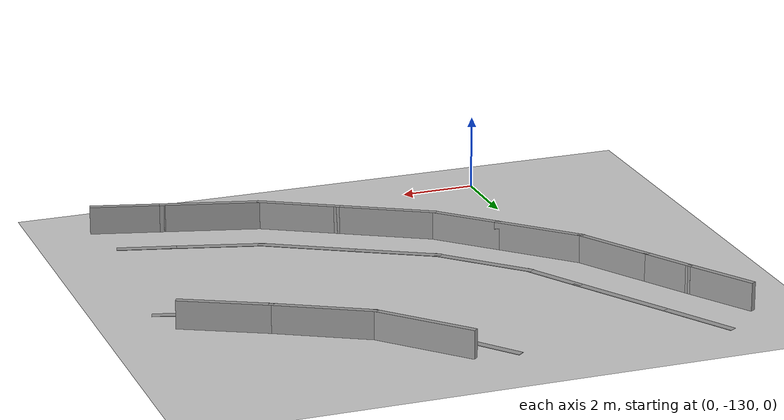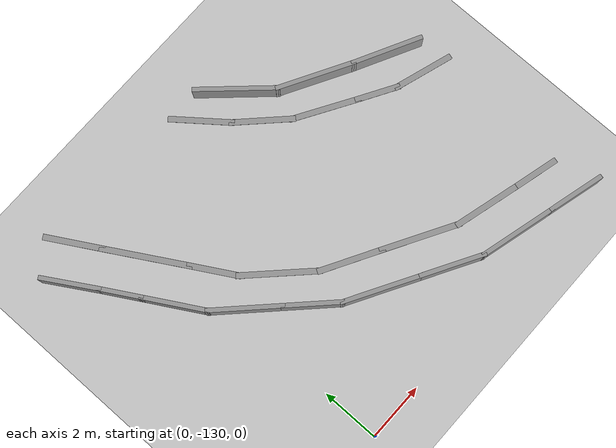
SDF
<sdf version="1.6">
 <world name="default">
  <model name="ground_plane">
   <static>1</static>
   <link name="link">
    <collision name="collision">
     <geometry><plane><normal>0 0 1</normal><size>100 100</size></plane></geometry>
     <surface>
      <contact><collide_bitmask>65535</collide_bitmask></contact>
      <friction><ode><mu>100</mu><mu2>50</mu2></ode></friction>
     </surface>
    </collision>
    <visual name="visual">
     <cast_shadows>0</cast_shadows>
     <geometry><plane><normal>0 0 1</normal><size>100 100</size></plane></geometry>
     <material>
      <script><uri>file://media/materials/scripts/gazebo.material</uri><name>Gazebo/Grey</name></script>
     </material>
    </visual>
   </link>
  </model>
  <model name="GercekDuvarSeritKoyu1">
   <link name="Wall_10">
    <pose>69.6091 -59.7396 0 0 -0 0.785398</pose>
    <inertial>
     <mass>1</mass>
     <inertia><ixx>1</ixx><ixy>0</ixy><ixz>0</ixz><iyy>1</iyy><iyz>0</iyz><izz>1</izz></inertia>
    </inertial>
    <visual name="Wall_10_Visual">
     <pose>0 0 0.375 0 -0 0</pose>
     <geometry><box><size>2.5 0.15 0.75</size></box></geometry>
     <material>
      <script><uri>file://media/materials/scripts/gazebo.material</uri><name>Gazebo/Grey</name></script>
      <ambient>0.5 0.5 0.5 1</ambient>
      <shader type="pixel"><normal_map>__default__</normal_map></shader>
      <diffuse>0.7 0.7 0.7 1</diffuse>
      <specular>0.01 0.01 0.01 1</specular>
      <emissive>0 0 0 1</emissive>
     </material>
     <meta><layer>0</layer></meta>
    </visual>
    <collision name="Wall_10_Collision">
     <pose>0 0 0.375 0 -0 0</pose>
     <geometry><box><size>2.5 0.15 0.75</size></box></geometry>
     <surface>
      <friction>
       <ode><mu>1</mu><mu2>1</mu2><fdir1>0 0 0</fdir1><slip1>0</slip1><slip2>0</slip2></ode>
       <torsional>
        <coefficient>1</coefficient>
        <patch_radius>0</patch_radius>
        <surface_radius>0</surface_radius>
        <use_patch_radius>1</use_patch_radius>
        <ode><slip>0</slip></ode>
       </torsional>
      </friction>
      <bounce><restitution_coefficient>0</restitution_coefficient><threshold>1e+06</threshold></bounce>
      <contact>
       <collide_without_contact>0</collide_without_contact>
       <collide_without_contact_bitmask>1</collide_without_contact_bitmask>
       <collide_bitmask>1</collide_bitmask>
       <ode>
        <soft_cfm>0</soft_cfm>
        <soft_erp>0.2</soft_erp>
        <kp>1e+13</kp>
        <kd>1</kd>
        <max_vel>0.01</max_vel>
        <min_depth>0</min_depth>
       </ode>
       <bullet>
        <split_impulse>1</split_impulse>
        <split_impulse_penetration_threshold>-0.01</split_impulse_penetration_threshold>
        <soft_cfm>0</soft_cfm>
        <soft_erp>0.2</soft_erp>
        <kp>1e+13</kp>
        <kd>1</kd>
       </bullet>
      </contact>
     </surface>
    </collision>
   </link>
   <link name="Wall_11">
    <pose>71.0941 -58.2546 0 0 -0 0.785398</pose>
    <inertial>
     <mass>1</mass>
     <inertia><ixx>1</ixx><ixy>0</ixy><ixz>0</ixz><iyy>1</iyy><iyz>0</iyz><izz>1</izz></inertia>
    </inertial>
    <visual name="Wall_11_Visual">
     <pose>0 0 0.375 0 -0 0</pose>
     <geometry><box><size>2 0.15 0.75</size></box></geometry>
     <material>
      <script><uri>file://media/materials/scripts/gazebo.material</uri><name>Gazebo/Grey</name></script>
      <ambient>0.5 0.5 0.5 1</ambient>
      <shader type="pixel"><normal_map>__default__</normal_map></shader>
      <diffuse>0.7 0.7 0.7 1</diffuse>
      <specular>0.01 0.01 0.01 1</specular>
      <emissive>0 0 0 1</emissive>
     </material>
     <meta><layer>0</layer></meta>
    </visual>
    <collision name="Wall_11_Collision">
     <pose>0 0 0.375 0 -0 0</pose>
     <geometry><box><size>2 0.15 0.75</size></box></geometry>
     <surface>
      <friction>
       <ode><mu>1</mu><mu2>1</mu2><fdir1>0 0 0</fdir1><slip1>0</slip1><slip2>0</slip2></ode>
       <torsional>
        <coefficient>1</coefficient>
        <patch_radius>0</patch_radius>
        <surface_radius>0</surface_radius>
        <use_patch_radius>1</use_patch_radius>
        <ode><slip>0</slip></ode>
       </torsional>
      </friction>
      <bounce><restitution_coefficient>0</restitution_coefficient><threshold>1e+06</threshold></bounce>
      <contact>
       <collide_without_contact>0</collide_without_contact>
       <collide_without_contact_bitmask>1</collide_without_contact_bitmask>
       <collide_bitmask>1</collide_bitmask>
       <ode>
        <soft_cfm>0</soft_cfm>
        <soft_erp>0.2</soft_erp>
        <kp>1e+13</kp>
        <kd>1</kd>
        <max_vel>0.01</max_vel>
        <min_depth>0</min_depth>
       </ode>
       <bullet>
        <split_impulse>1</split_impulse>
        <split_impulse_penetration_threshold>-0.01</split_impulse_penetration_threshold>
        <soft_cfm>0</soft_cfm>
        <soft_erp>0.2</soft_erp>
        <kp>1e+13</kp>
        <kd>1</kd>
       </bullet>
      </contact>
     </surface>
    </collision>
   </link>
   <link name="Wall_12">
    <pose>72.3981 -56.4746 0 0 -0 1.04726</pose>
    <inertial>
     <mass>1</mass>
     <inertia><ixx>1</ixx><ixy>0</ixy><ixz>0</ixz><iyy>1</iyy><iyz>0</iyz><izz>1</izz></inertia>
    </inertial>
    <visual name="Wall_12_Visual">
     <pose>0 0 0.375 0 -0 0</pose>
     <geometry><box><size>2.75 0.15 0.75</size></box></geometry>
     <material>
      <script><uri>file://media/materials/scripts/gazebo.material</uri><name>Gazebo/Grey</name></script>
      <ambient>0.5 0.5 0.5 1</ambient>
      <shader type="pixel"><normal_map>__default__</normal_map></shader>
      <diffuse>0.7 0.7 0.7 1</diffuse>
      <specular>0.01 0.01 0.01 1</specular>
      <emissive>0 0 0 1</emissive>
     </material>
     <meta><layer>0</layer></meta>
    </visual>
    <collision name="Wall_12_Collision">
     <pose>0 0 0.375 0 -0 0</pose>
     <geometry><box><size>2.75 0.15 0.75</size></box></geometry>
     <surface>
      <friction>
       <ode><mu>1</mu><mu2>1</mu2><fdir1>0 0 0</fdir1><slip1>0</slip1><slip2>0</slip2></ode>
       <torsional>
        <coefficient>1</coefficient>
        <patch_radius>0</patch_radius>
        <surface_radius>0</surface_radius>
        <use_patch_radius>1</use_patch_radius>
        <ode><slip>0</slip></ode>
       </torsional>
      </friction>
      <bounce><restitution_coefficient>0</restitution_coefficient><threshold>1e+06</threshold></bounce>
      <contact>
       <collide_without_contact>0</collide_without_contact>
       <collide_without_contact_bitmask>1</collide_without_contact_bitmask>
       <collide_bitmask>1</collide_bitmask>
       <ode>
        <soft_cfm>0</soft_cfm>
        <soft_erp>0.2</soft_erp>
        <kp>1e+13</kp>
        <kd>1</kd>
        <max_vel>0.01</max_vel>
        <min_depth>0</min_depth>
       </ode>
       <bullet>
        <split_impulse>1</split_impulse>
        <split_impulse_penetration_threshold>-0.01</split_impulse_penetration_threshold>
        <soft_cfm>0</soft_cfm>
        <soft_erp>0.2</soft_erp>
        <kp>1e+13</kp>
        <kd>1</kd>
       </bullet>
      </contact>
     </surface>
    </collision>
   </link>
   <link name="Wall_13">
    <pose>73.5731 -54.4396 0 0 -0 1.04704</pose>
    <inertial>
     <mass>1</mass>
     <inertia><ixx>1</ixx><ixy>0</ixy><ixz>0</ixz><iyy>1</iyy><iyz>0</iyz><izz>1</izz></inertia>
    </inertial>
    <visual name="Wall_13_Visual">
     <pose>0 0 0.375 0 -0 0</pose>
     <geometry><box><size>2.25 0.15 0.75</size></box></geometry>
     <material>
      <script><uri>file://media/materials/scripts/gazebo.material</uri><name>Gazebo/Grey</name></script>
      <ambient>0.5 0.5 0.5 1</ambient>
      <shader type="pixel"><normal_map>__default__</normal_map></shader>
      <diffuse>0.7 0.7 0.7 1</diffuse>
      <specular>0.01 0.01 0.01 1</specular>
      <emissive>0 0 0 1</emissive>
     </material>
     <meta><layer>0</layer></meta>
    </visual>
    <collision name="Wall_13_Collision">
     <pose>0 0 0.375 0 -0 0</pose>
     <geometry><box><size>2.25 0.15 0.75</size></box></geometry>
     <surface>
      <friction>
       <ode><mu>1</mu><mu2>1</mu2><fdir1>0 0 0</fdir1><slip1>0</slip1><slip2>0</slip2></ode>
       <torsional>
        <coefficient>1</coefficient>
        <patch_radius>0</patch_radius>
        <surface_radius>0</surface_radius>
        <use_patch_radius>1</use_patch_radius>
        <ode><slip>0</slip></ode>
       </torsional>
      </friction>
      <bounce><restitution_coefficient>0</restitution_coefficient><threshold>1e+06</threshold></bounce>
      <contact>
       <collide_without_contact>0</collide_without_contact>
       <collide_without_contact_bitmask>1</collide_without_contact_bitmask>
       <collide_bitmask>1</collide_bitmask>
       <ode>
        <soft_cfm>0</soft_cfm>
        <soft_erp>0.2</soft_erp>
        <kp>1e+13</kp>
        <kd>1</kd>
        <max_vel>0.01</max_vel>
        <min_depth>0</min_depth>
       </ode>
       <bullet>
        <split_impulse>1</split_impulse>
        <split_impulse_penetration_threshold>-0.01</split_impulse_penetration_threshold>
        <soft_cfm>0</soft_cfm>
        <soft_erp>0.2</soft_erp>
        <kp>1e+13</kp>
        <kd>1</kd>
       </bullet>
      </contact>
     </surface>
    </collision>
   </link>
   <link name="Wall_132">
    <pose>64.6506 -54.6826 0 0 -0 0.743393</pose>
    <inertial>
     <mass>1</mass>
     <inertia><ixx>1</ixx><ixy>0</ixy><ixz>0</ixz><iyy>1</iyy><iyz>0</iyz><izz>1</izz></inertia>
    </inertial>
    <visual name="Wall_132_Visual">
     <pose>0 0 0.375 0 -0 0</pose>
     <geometry><box><size>2.82716 0.15 0.75</size></box></geometry>
     <material>
      <script><uri>file://media/materials/scripts/gazebo.material</uri><name>Gazebo/Grey</name></script>
      <ambient>0.5 0.5 0.5 1</ambient>
      <shader type="pixel"><normal_map>__default__</normal_map></shader>
      <diffuse>0.7 0.7 0.7 1</diffuse>
      <specular>0.01 0.01 0.01 1</specular>
      <emissive>0 0 0 1</emissive>
     </material>
     <meta><layer>0</layer></meta>
    </visual>
    <collision name="Wall_132_Collision">
     <pose>0 0 0.375 0 -0 0</pose>
     <geometry><box><size>2.82716 0.15 0.75</size></box></geometry>
     <surface>
      <friction>
       <ode><mu>1</mu><mu2>1</mu2><fdir1>0 0 0</fdir1><slip1>0</slip1><slip2>0</slip2></ode>
       <torsional>
        <coefficient>1</coefficient>
        <patch_radius>0</patch_radius>
        <surface_radius>0</surface_radius>
        <use_patch_radius>1</use_patch_radius>
        <ode><slip>0</slip></ode>
       </torsional>
      </friction>
      <bounce><restitution_coefficient>0</restitution_coefficient><threshold>1e+06</threshold></bounce>
      <contact>
       <collide_without_contact>0</collide_without_contact>
       <collide_without_contact_bitmask>1</collide_without_contact_bitmask>
       <collide_bitmask>1</collide_bitmask>
       <ode>
        <soft_cfm>0</soft_cfm>
        <soft_erp>0.2</soft_erp>
        <kp>1e+13</kp>
        <kd>1</kd>
        <max_vel>0.01</max_vel>
        <min_depth>0</min_depth>
       </ode>
       <bullet>
        <split_impulse>1</split_impulse>
        <split_impulse_penetration_threshold>-0.01</split_impulse_penetration_threshold>
        <soft_cfm>0</soft_cfm>
        <soft_erp>0.2</soft_erp>
        <kp>1e+13</kp>
        <kd>1</kd>
       </bullet>
      </contact>
     </surface>
    </collision>
   </link>
   <link name="Wall_133">
    <pose>66.2726 -52.6506 0 0 -0 1.0563</pose>
    <inertial>
     <mass>1</mass>
     <inertia><ixx>1</ixx><ixy>0</ixy><ixz>0</ixz><iyy>1</iyy><iyz>0</iyz><izz>1</izz></inertia>
    </inertial>
    <visual name="Wall_133_Visual">
     <pose>0 0 0.375 0 -0 0</pose>
     <geometry><box><size>2.73713 0.15 0.75</size></box></geometry>
     <material>
      <script><uri>file://media/materials/scripts/gazebo.material</uri><name>Gazebo/Grey</name></script>
      <ambient>0.5 0.5 0.5 1</ambient>
      <shader type="pixel"><normal_map>__default__</normal_map></shader>
      <diffuse>0.7 0.7 0.7 1</diffuse>
      <specular>0.01 0.01 0.01 1</specular>
      <emissive>0 0 0 1</emissive>
     </material>
     <meta><layer>0</layer></meta>
    </visual>
    <collision name="Wall_133_Collision">
     <pose>0 0 0.375 0 -0 0</pose>
     <geometry><box><size>2.73713 0.15 0.75</size></box></geometry>
     <surface>
      <friction>
       <ode><mu>1</mu><mu2>1</mu2><fdir1>0 0 0</fdir1><slip1>0</slip1><slip2>0</slip2></ode>
       <torsional>
        <coefficient>1</coefficient>
        <patch_radius>0</patch_radius>
        <surface_radius>0</surface_radius>
        <use_patch_radius>1</use_patch_radius>
        <ode><slip>0</slip></ode>
       </torsional>
      </friction>
      <bounce><restitution_coefficient>0</restitution_coefficient><threshold>1e+06</threshold></bounce>
      <contact>
       <collide_without_contact>0</collide_without_contact>
       <collide_without_contact_bitmask>1</collide_without_contact_bitmask>
       <collide_bitmask>1</collide_bitmask>
       <ode>
        <soft_cfm>0</soft_cfm>
        <soft_erp>0.2</soft_erp>
        <kp>1e+13</kp>
        <kd>1</kd>
        <max_vel>0.01</max_vel>
        <min_depth>0</min_depth>
       </ode>
       <bullet>
        <split_impulse>1</split_impulse>
        <split_impulse_penetration_threshold>-0.01</split_impulse_penetration_threshold>
        <soft_cfm>0</soft_cfm>
        <soft_erp>0.2</soft_erp>
        <kp>1e+13</kp>
        <kd>1</kd>
       </bullet>
      </contact>
     </surface>
    </collision>
   </link>
   <link name="Wall_134">
    <pose>67.4441 -50.4936 0 0 -0 1.09213</pose>
    <inertial>
     <mass>1</mass>
     <inertia><ixx>1</ixx><ixy>0</ixy><ixz>0</ixz><iyy>1</iyy><iyz>0</iyz><izz>1</izz></inertia>
    </inertial>
    <visual name="Wall_134_Visual">
     <pose>0 0 0.375 0 -0 0</pose>
     <geometry><box><size>2.4726 0.15 0.75</size></box></geometry>
     <material>
      <script><uri>file://media/materials/scripts/gazebo.material</uri><name>Gazebo/Grey</name></script>
      <ambient>0.5 0.5 0.5 1</ambient>
      <shader type="pixel"><normal_map>__default__</normal_map></shader>
      <diffuse>0.7 0.7 0.7 1</diffuse>
      <specular>0.01 0.01 0.01 1</specular>
      <emissive>0 0 0 1</emissive>
     </material>
     <meta><layer>0</layer></meta>
    </visual>
    <collision name="Wall_134_Collision">
     <pose>0 0 0.375 0 -0 0</pose>
     <geometry><box><size>2.4726 0.15 0.75</size></box></geometry>
     <surface>
      <friction>
       <ode><mu>1</mu><mu2>1</mu2><fdir1>0 0 0</fdir1><slip1>0</slip1><slip2>0</slip2></ode>
       <torsional>
        <coefficient>1</coefficient>
        <patch_radius>0</patch_radius>
        <surface_radius>0</surface_radius>
        <use_patch_radius>1</use_patch_radius>
        <ode><slip>0</slip></ode>
       </torsional>
      </friction>
      <bounce><restitution_coefficient>0</restitution_coefficient><threshold>1e+06</threshold></bounce>
      <contact>
       <collide_without_contact>0</collide_without_contact>
       <collide_without_contact_bitmask>1</collide_without_contact_bitmask>
       <collide_bitmask>1</collide_bitmask>
       <ode>
        <soft_cfm>0</soft_cfm>
        <soft_erp>0.2</soft_erp>
        <kp>1e+13</kp>
        <kd>1</kd>
        <max_vel>0.01</max_vel>
        <min_depth>0</min_depth>
       </ode>
       <bullet>
        <split_impulse>1</split_impulse>
        <split_impulse_penetration_threshold>-0.01</split_impulse_penetration_threshold>
        <soft_cfm>0</soft_cfm>
        <soft_erp>0.2</soft_erp>
        <kp>1e+13</kp>
        <kd>1</kd>
       </bullet>
      </contact>
     </surface>
    </collision>
   </link>
   <link name="Wall_14">
    <pose>74.4346 -52.2746 0 0 -0 1.30903</pose>
    <inertial>
     <mass>1</mass>
     <inertia><ixx>1</ixx><ixy>0</ixy><ixz>0</ixz><iyy>1</iyy><iyz>0</iyz><izz>1</izz></inertia>
    </inertial>
    <visual name="Wall_14_Visual">
     <pose>0 0 0.375 0 -0 0</pose>
     <geometry><box><size>2.75 0.15 0.75</size></box></geometry>
     <material>
      <script><uri>file://media/materials/scripts/gazebo.material</uri><name>Gazebo/Grey</name></script>
      <ambient>0.5 0.5 0.5 1</ambient>
      <shader type="pixel"><normal_map>__default__</normal_map></shader>
      <diffuse>0.7 0.7 0.7 1</diffuse>
      <specular>0.01 0.01 0.01 1</specular>
      <emissive>0 0 0 1</emissive>
     </material>
     <meta><layer>0</layer></meta>
    </visual>
    <collision name="Wall_14_Collision">
     <pose>0 0 0.375 0 -0 0</pose>
     <geometry><box><size>2.75 0.15 0.75</size></box></geometry>
     <surface>
      <friction>
       <ode><mu>1</mu><mu2>1</mu2><fdir1>0 0 0</fdir1><slip1>0</slip1><slip2>0</slip2></ode>
       <torsional>
        <coefficient>1</coefficient>
        <patch_radius>0</patch_radius>
        <surface_radius>0</surface_radius>
        <use_patch_radius>1</use_patch_radius>
        <ode><slip>0</slip></ode>
       </torsional>
      </friction>
      <bounce><restitution_coefficient>0</restitution_coefficient><threshold>1e+06</threshold></bounce>
      <contact>
       <collide_without_contact>0</collide_without_contact>
       <collide_without_contact_bitmask>1</collide_without_contact_bitmask>
       <collide_bitmask>1</collide_bitmask>
       <ode>
        <soft_cfm>0</soft_cfm>
        <soft_erp>0.2</soft_erp>
        <kp>1e+13</kp>
        <kd>1</kd>
        <max_vel>0.01</max_vel>
        <min_depth>0</min_depth>
       </ode>
       <bullet>
        <split_impulse>1</split_impulse>
        <split_impulse_penetration_threshold>-0.01</split_impulse_penetration_threshold>
        <soft_cfm>0</soft_cfm>
        <soft_erp>0.2</soft_erp>
        <kp>1e+13</kp>
        <kd>1</kd>
       </bullet>
      </contact>
     </surface>
    </collision>
   </link>
   <link name="Wall_15">
    <pose>75.0106 -50.1251 0 0 -0 1.30891</pose>
    <inertial>
     <mass>1</mass>
     <inertia><ixx>1</ixx><ixy>0</ixy><ixz>0</ixz><iyy>1</iyy><iyz>0</iyz><izz>1</izz></inertia>
    </inertial>
    <visual name="Wall_15_Visual">
     <pose>0 0 0.375 0 -0 0</pose>
     <geometry><box><size>2 0.15 0.75</size></box></geometry>
     <material>
      <script><uri>file://media/materials/scripts/gazebo.material</uri><name>Gazebo/Grey</name></script>
      <ambient>0.5 0.5 0.5 1</ambient>
      <shader type="pixel"><normal_map>__default__</normal_map></shader>
      <diffuse>0.7 0.7 0.7 1</diffuse>
      <specular>0.01 0.01 0.01 1</specular>
      <emissive>0 0 0 1</emissive>
     </material>
     <meta><layer>0</layer></meta>
    </visual>
    <collision name="Wall_15_Collision">
     <pose>0 0 0.375 0 -0 0</pose>
     <geometry><box><size>2 0.15 0.75</size></box></geometry>
     <surface>
      <friction>
       <ode><mu>1</mu><mu2>1</mu2><fdir1>0 0 0</fdir1><slip1>0</slip1><slip2>0</slip2></ode>
       <torsional>
        <coefficient>1</coefficient>
        <patch_radius>0</patch_radius>
        <surface_radius>0</surface_radius>
        <use_patch_radius>1</use_patch_radius>
        <ode><slip>0</slip></ode>
       </torsional>
      </friction>
      <bounce><restitution_coefficient>0</restitution_coefficient><threshold>1e+06</threshold></bounce>
      <contact>
       <collide_without_contact>0</collide_without_contact>
       <collide_without_contact_bitmask>1</collide_without_contact_bitmask>
       <collide_bitmask>1</collide_bitmask>
       <ode>
        <soft_cfm>0</soft_cfm>
        <soft_erp>0.2</soft_erp>
        <kp>1e+13</kp>
        <kd>1</kd>
        <max_vel>0.01</max_vel>
        <min_depth>0</min_depth>
       </ode>
       <bullet>
        <split_impulse>1</split_impulse>
        <split_impulse_penetration_threshold>-0.01</split_impulse_penetration_threshold>
        <soft_cfm>0</soft_cfm>
        <soft_erp>0.2</soft_erp>
        <kp>1e+13</kp>
        <kd>1</kd>
       </bullet>
      </contact>
     </surface>
    </collision>
   </link>
   <link name="Wall_246">
    <pose>64.0211 -61.7731 0 0 -0 0.523639</pose>
    <visual name="Wall_246_Visual">
     <pose>0 0 0.005 0 -0 0</pose>
     <geometry><box><size>2.04987 0.2 0.01</size></box></geometry>
     <material>
      <script><uri>file://media/materials/scripts/gazebo.material</uri><name>Gazebo/Grey</name></script>
      <ambient>1 1 1 1</ambient>
      <shader type="pixel"/>
     </material>
     <meta><layer>0</layer></meta>
    </visual>
    <collision name="Wall_246_Collision">
     <pose>0 0 0.005 0 -0 0</pose>
     <geometry><box><size>2.04987 0.2 0.01</size></box></geometry>
     <surface>
      <friction>
       <ode><mu>1</mu><mu2>1</mu2><fdir1>0 0 0</fdir1><slip1>0</slip1><slip2>0</slip2></ode>
       <torsional>
        <coefficient>1</coefficient>
        <patch_radius>0</patch_radius>
        <surface_radius>0</surface_radius>
        <use_patch_radius>1</use_patch_radius>
        <ode><slip>0</slip></ode>
       </torsional>
      </friction>
      <bounce><restitution_coefficient>0</restitution_coefficient><threshold>1e+06</threshold></bounce>
      <contact>
       <collide_without_contact>0</collide_without_contact>
       <collide_without_contact_bitmask>1</collide_without_contact_bitmask>
       <collide_bitmask>1</collide_bitmask>
       <ode>
        <soft_cfm>0</soft_cfm>
        <soft_erp>0.2</soft_erp>
        <kp>1e+13</kp>
        <kd>1</kd>
        <max_vel>0.01</max_vel>
        <min_depth>0</min_depth>
       </ode>
       <bullet>
        <split_impulse>1</split_impulse>
        <split_impulse_penetration_threshold>-0.01</split_impulse_penetration_threshold>
        <soft_cfm>0</soft_cfm>
        <soft_erp>0.2</soft_erp>
        <kp>1e+13</kp>
        <kd>1</kd>
       </bullet>
      </contact>
     </surface>
    </collision>
   </link>
   <link name="Wall_247">
    <pose>66.0561 -60.5916 0 0 -0 0.52757</pose>
    <visual name="Wall_247_Visual">
     <pose>0 0 0.005 0 -0 0</pose>
     <geometry><box><size>3.05637 0.2 0.01</size></box></geometry>
     <material>
      <script><uri>file://media/materials/scripts/gazebo.material</uri><name>Gazebo/Grey</name></script>
      <ambient>1 1 1 1</ambient>
      <shader type="pixel"/>
     </material>
     <meta><layer>0</layer></meta>
    </visual>
    <collision name="Wall_247_Collision">
     <pose>0 0 0.005 0 -0 0</pose>
     <geometry><box><size>3.05637 0.2 0.01</size></box></geometry>
     <surface>
      <friction>
       <ode><mu>1</mu><mu2>1</mu2><fdir1>0 0 0</fdir1><slip1>0</slip1><slip2>0</slip2></ode>
       <torsional>
        <coefficient>1</coefficient>
        <patch_radius>0</patch_radius>
        <surface_radius>0</surface_radius>
        <use_patch_radius>1</use_patch_radius>
        <ode><slip>0</slip></ode>
       </torsional>
      </friction>
      <bounce><restitution_coefficient>0</restitution_coefficient><threshold>1e+06</threshold></bounce>
      <contact>
       <collide_without_contact>0</collide_without_contact>
       <collide_without_contact_bitmask>1</collide_without_contact_bitmask>
       <collide_bitmask>1</collide_bitmask>
       <ode>
        <soft_cfm>0</soft_cfm>
        <soft_erp>0.2</soft_erp>
        <kp>1e+13</kp>
        <kd>1</kd>
        <max_vel>0.01</max_vel>
        <min_depth>0</min_depth>
       </ode>
       <bullet>
        <split_impulse>1</split_impulse>
        <split_impulse_penetration_threshold>-0.01</split_impulse_penetration_threshold>
        <soft_cfm>0</soft_cfm>
        <soft_erp>0.2</soft_erp>
        <kp>1e+13</kp>
        <kd>1</kd>
       </bullet>
      </contact>
     </surface>
    </collision>
   </link>
   <link name="Wall_248">
    <pose>67.9831 -59.4726 0 0 -0 0.523487</pose>
    <visual name="Wall_248_Visual">
     <pose>0 0 0.005 0 -0 0</pose>
     <geometry><box><size>1.80031 0.2 0.01</size></box></geometry>
     <material>
      <script><uri>file://media/materials/scripts/gazebo.material</uri><name>Gazebo/Grey</name></script>
      <ambient>1 1 1 1</ambient>
      <shader type="pixel"/>
     </material>
     <meta><layer>0</layer></meta>
    </visual>
    <collision name="Wall_248_Collision">
     <pose>0 0 0.005 0 -0 0</pose>
     <geometry><box><size>1.80031 0.2 0.01</size></box></geometry>
     <surface>
      <friction>
       <ode><mu>1</mu><mu2>1</mu2><fdir1>0 0 0</fdir1><slip1>0</slip1><slip2>0</slip2></ode>
       <torsional>
        <coefficient>1</coefficient>
        <patch_radius>0</patch_radius>
        <surface_radius>0</surface_radius>
        <use_patch_radius>1</use_patch_radius>
        <ode><slip>0</slip></ode>
       </torsional>
      </friction>
      <bounce><restitution_coefficient>0</restitution_coefficient><threshold>1e+06</threshold></bounce>
      <contact>
       <collide_without_contact>0</collide_without_contact>
       <collide_without_contact_bitmask>1</collide_without_contact_bitmask>
       <collide_bitmask>1</collide_bitmask>
       <ode>
        <soft_cfm>0</soft_cfm>
        <soft_erp>0.2</soft_erp>
        <kp>1e+13</kp>
        <kd>1</kd>
        <max_vel>0.01</max_vel>
        <min_depth>0</min_depth>
       </ode>
       <bullet>
        <split_impulse>1</split_impulse>
        <split_impulse_penetration_threshold>-0.01</split_impulse_penetration_threshold>
        <soft_cfm>0</soft_cfm>
        <soft_erp>0.2</soft_erp>
        <kp>1e+13</kp>
        <kd>1</kd>
       </bullet>
      </contact>
     </surface>
    </collision>
   </link>
   <link name="Wall_249">
    <pose>69.5951 -58.1601 0 0 -0 0.781849</pose>
    <visual name="Wall_249_Visual">
     <pose>0 0 0.005 0 -0 0</pose>
     <geometry><box><size>2.79015 0.2 0.01</size></box></geometry>
     <material>
      <script><uri>file://media/materials/scripts/gazebo.material</uri><name>Gazebo/Grey</name></script>
      <ambient>1 1 1 1</ambient>
      <shader type="pixel"/>
     </material>
     <meta><layer>0</layer></meta>
    </visual>
    <collision name="Wall_249_Collision">
     <pose>0 0 0.005 0 -0 0</pose>
     <geometry><box><size>2.79015 0.2 0.01</size></box></geometry>
     <surface>
      <friction>
       <ode><mu>1</mu><mu2>1</mu2><fdir1>0 0 0</fdir1><slip1>0</slip1><slip2>0</slip2></ode>
       <torsional>
        <coefficient>1</coefficient>
        <patch_radius>0</patch_radius>
        <surface_radius>0</surface_radius>
        <use_patch_radius>1</use_patch_radius>
        <ode><slip>0</slip></ode>
       </torsional>
      </friction>
      <bounce><restitution_coefficient>0</restitution_coefficient><threshold>1e+06</threshold></bounce>
      <contact>
       <collide_without_contact>0</collide_without_contact>
       <collide_without_contact_bitmask>1</collide_without_contact_bitmask>
       <collide_bitmask>1</collide_bitmask>
       <ode>
        <soft_cfm>0</soft_cfm>
        <soft_erp>0.2</soft_erp>
        <kp>1e+13</kp>
        <kd>1</kd>
        <max_vel>0.01</max_vel>
        <min_depth>0</min_depth>
       </ode>
       <bullet>
        <split_impulse>1</split_impulse>
        <split_impulse_penetration_threshold>-0.01</split_impulse_penetration_threshold>
        <soft_cfm>0</soft_cfm>
        <soft_erp>0.2</soft_erp>
        <kp>1e+13</kp>
        <kd>1</kd>
       </bullet>
      </contact>
     </surface>
    </collision>
   </link>
   <link name="Wall_250">
    <pose>71.0326 -56.3381 0 0 -0 1.05266</pose>
    <visual name="Wall_250_Visual">
     <pose>0 0 0.005 0 -0 0</pose>
     <geometry><box><size>2.29383 0.2 0.01</size></box></geometry>
     <material>
      <script><uri>file://media/materials/scripts/gazebo.material</uri><name>Gazebo/Grey</name></script>
      <ambient>1 1 1 1</ambient>
      <shader type="pixel"/>
     </material>
     <meta><layer>0</layer></meta>
    </visual>
    <collision name="Wall_250_Collision">
     <pose>0 0 0.005 0 -0 0</pose>
     <geometry><box><size>2.29383 0.2 0.01</size></box></geometry>
     <surface>
      <friction>
       <ode><mu>1</mu><mu2>1</mu2><fdir1>0 0 0</fdir1><slip1>0</slip1><slip2>0</slip2></ode>
       <torsional>
        <coefficient>1</coefficient>
        <patch_radius>0</patch_radius>
        <surface_radius>0</surface_radius>
        <use_patch_radius>1</use_patch_radius>
        <ode><slip>0</slip></ode>
       </torsional>
      </friction>
      <bounce><restitution_coefficient>0</restitution_coefficient><threshold>1e+06</threshold></bounce>
      <contact>
       <collide_without_contact>0</collide_without_contact>
       <collide_without_contact_bitmask>1</collide_without_contact_bitmask>
       <collide_bitmask>1</collide_bitmask>
       <ode>
        <soft_cfm>0</soft_cfm>
        <soft_erp>0.2</soft_erp>
        <kp>1e+13</kp>
        <kd>1</kd>
        <max_vel>0.01</max_vel>
        <min_depth>0</min_depth>
       </ode>
       <bullet>
        <split_impulse>1</split_impulse>
        <split_impulse_penetration_threshold>-0.01</split_impulse_penetration_threshold>
        <soft_cfm>0</soft_cfm>
        <soft_erp>0.2</soft_erp>
        <kp>1e+13</kp>
        <kd>1</kd>
       </bullet>
      </contact>
     </surface>
    </collision>
   </link>
   <link name="Wall_251">
    <pose>72.2011 -54.3026 0 0 -0 1.04726</pose>
    <visual name="Wall_251_Visual">
     <pose>0 0 0.005 0 -0 0</pose>
     <geometry><box><size>2.80029 0.2 0.01</size></box></geometry>
     <material>
      <script><uri>file://media/materials/scripts/gazebo.material</uri><name>Gazebo/Grey</name></script>
      <ambient>1 1 1 1</ambient>
      <shader type="pixel"/>
     </material>
     <meta><layer>0</layer></meta>
    </visual>
    <collision name="Wall_251_Collision">
     <pose>0 0 0.005 0 -0 0</pose>
     <geometry><box><size>2.80029 0.2 0.01</size></box></geometry>
     <surface>
      <friction>
       <ode><mu>1</mu><mu2>1</mu2><fdir1>0 0 0</fdir1><slip1>0</slip1><slip2>0</slip2></ode>
       <torsional>
        <coefficient>1</coefficient>
        <patch_radius>0</patch_radius>
        <surface_radius>0</surface_radius>
        <use_patch_radius>1</use_patch_radius>
        <ode><slip>0</slip></ode>
       </torsional>
      </friction>
      <bounce><restitution_coefficient>0</restitution_coefficient><threshold>1e+06</threshold></bounce>
      <contact>
       <collide_without_contact>0</collide_without_contact>
       <collide_without_contact_bitmask>1</collide_without_contact_bitmask>
       <collide_bitmask>1</collide_bitmask>
       <ode>
        <soft_cfm>0</soft_cfm>
        <soft_erp>0.2</soft_erp>
        <kp>1e+13</kp>
        <kd>1</kd>
        <max_vel>0.01</max_vel>
        <min_depth>0</min_depth>
       </ode>
       <bullet>
        <split_impulse>1</split_impulse>
        <split_impulse_penetration_threshold>-0.01</split_impulse_penetration_threshold>
        <soft_cfm>0</soft_cfm>
        <soft_erp>0.2</soft_erp>
        <kp>1e+13</kp>
        <kd>1</kd>
       </bullet>
      </contact>
     </surface>
    </collision>
   </link>
   <link name="Wall_252">
    <pose>73.1616 -52.0421 0 0 -0 1.30365</pose>
    <visual name="Wall_252_Visual">
     <pose>0 0 0.005 0 -0 0</pose>
     <geometry><box><size>2.55245 0.2 0.01</size></box></geometry>
     <material>
      <script><uri>file://media/materials/scripts/gazebo.material</uri><name>Gazebo/Grey</name></script>
      <ambient>1 1 1 1</ambient>
      <shader type="pixel"/>
     </material>
     <meta><layer>0</layer></meta>
    </visual>
    <collision name="Wall_252_Collision">
     <pose>0 0 0.005 0 -0 0</pose>
     <geometry><box><size>2.55245 0.2 0.01</size></box></geometry>
     <surface>
      <friction>
       <ode><mu>1</mu><mu2>1</mu2><fdir1>0 0 0</fdir1><slip1>0</slip1><slip2>0</slip2></ode>
       <torsional>
        <coefficient>1</coefficient>
        <patch_radius>0</patch_radius>
        <surface_radius>0</surface_radius>
        <use_patch_radius>1</use_patch_radius>
        <ode><slip>0</slip></ode>
       </torsional>
      </friction>
      <bounce><restitution_coefficient>0</restitution_coefficient><threshold>1e+06</threshold></bounce>
      <contact>
       <collide_without_contact>0</collide_without_contact>
       <collide_without_contact_bitmask>1</collide_without_contact_bitmask>
       <collide_bitmask>1</collide_bitmask>
       <ode>
        <soft_cfm>0</soft_cfm>
        <soft_erp>0.2</soft_erp>
        <kp>1e+13</kp>
        <kd>1</kd>
        <max_vel>0.01</max_vel>
        <min_depth>0</min_depth>
       </ode>
       <bullet>
        <split_impulse>1</split_impulse>
        <split_impulse_penetration_threshold>-0.01</split_impulse_penetration_threshold>
        <soft_cfm>0</soft_cfm>
        <soft_erp>0.2</soft_erp>
        <kp>1e+13</kp>
        <kd>1</kd>
       </bullet>
      </contact>
     </surface>
    </collision>
   </link>
   <link name="Wall_254">
    <pose>73.6471 -50.2441 0 0 -0 1.31292</pose>
    <visual name="Wall_254_Visual">
     <pose>0 0 0.005 0 -0 0</pose>
     <geometry><box><size>1.57238 0.2 0.01</size></box></geometry>
     <material>
      <script><uri>file://media/materials/scripts/gazebo.material</uri><name>Gazebo/Grey</name></script>
      <ambient>1 1 1 1</ambient>
      <shader type="pixel"/>
     </material>
     <meta><layer>0</layer></meta>
    </visual>
    <collision name="Wall_254_Collision">
     <pose>0 0 0.005 0 -0 0</pose>
     <geometry><box><size>1.57238 0.2 0.01</size></box></geometry>
     <surface>
      <friction>
       <ode><mu>1</mu><mu2>1</mu2><fdir1>0 0 0</fdir1><slip1>0</slip1><slip2>0</slip2></ode>
       <torsional>
        <coefficient>1</coefficient>
        <patch_radius>0</patch_radius>
        <surface_radius>0</surface_radius>
        <use_patch_radius>1</use_patch_radius>
        <ode><slip>0</slip></ode>
       </torsional>
      </friction>
      <bounce><restitution_coefficient>0</restitution_coefficient><threshold>1e+06</threshold></bounce>
      <contact>
       <collide_without_contact>0</collide_without_contact>
       <collide_without_contact_bitmask>1</collide_without_contact_bitmask>
       <collide_bitmask>1</collide_bitmask>
       <ode>
        <soft_cfm>0</soft_cfm>
        <soft_erp>0.2</soft_erp>
        <kp>1e+13</kp>
        <kd>1</kd>
        <max_vel>0.01</max_vel>
        <min_depth>0</min_depth>
       </ode>
       <bullet>
        <split_impulse>1</split_impulse>
        <split_impulse_penetration_threshold>-0.01</split_impulse_penetration_threshold>
        <soft_cfm>0</soft_cfm>
        <soft_erp>0.2</soft_erp>
        <kp>1e+13</kp>
        <kd>1</kd>
       </bullet>
      </contact>
     </surface>
    </collision>
   </link>
   <link name="Wall_427">
    <pose>64.3521 -56.1041 0 0 -0 0.665064</pose>
    <visual name="Wall_427_Visual">
     <pose>0 0 0.005 0 -0 0</pose>
     <geometry><box><size>2.18541 0.2 0.01</size></box></geometry>
     <material>
      <script><uri>file://media/materials/scripts/gazebo.material</uri><name>Gazebo/Grey</name></script>
      <ambient>1 1 1 1</ambient>
      <shader type="pixel"/>
     </material>
     <meta><layer>0</layer></meta>
    </visual>
    <collision name="Wall_427_Collision">
     <pose>0 0 0.005 0 -0 0</pose>
     <geometry><box><size>2.18541 0.2 0.01</size></box></geometry>
     <surface>
      <friction>
       <ode><mu>1</mu><mu2>1</mu2><fdir1>0 0 0</fdir1><slip1>0</slip1><slip2>0</slip2></ode>
       <torsional>
        <coefficient>1</coefficient>
        <patch_radius>0</patch_radius>
        <surface_radius>0</surface_radius>
        <use_patch_radius>1</use_patch_radius>
        <ode><slip>0</slip></ode>
       </torsional>
      </friction>
      <bounce><restitution_coefficient>0</restitution_coefficient><threshold>1e+06</threshold></bounce>
      <contact>
       <collide_without_contact>0</collide_without_contact>
       <collide_without_contact_bitmask>1</collide_without_contact_bitmask>
       <collide_bitmask>1</collide_bitmask>
       <ode>
        <soft_cfm>0</soft_cfm>
        <soft_erp>0.2</soft_erp>
        <kp>1e+13</kp>
        <kd>1</kd>
        <max_vel>0.01</max_vel>
        <min_depth>0</min_depth>
       </ode>
       <bullet>
        <split_impulse>1</split_impulse>
        <split_impulse_penetration_threshold>-0.01</split_impulse_penetration_threshold>
        <soft_cfm>0</soft_cfm>
        <soft_erp>0.2</soft_erp>
        <kp>1e+13</kp>
        <kd>1</kd>
       </bullet>
      </contact>
     </surface>
    </collision>
   </link>
   <link name="Wall_428">
    <pose>65.8376 -54.7876 0 0 -0 0.785043</pose>
    <visual name="Wall_428_Visual">
     <pose>0 0 0.005 0 -0 0</pose>
     <geometry><box><size>2.19175 0.2 0.01</size></box></geometry>
     <material>
      <script><uri>file://media/materials/scripts/gazebo.material</uri><name>Gazebo/Grey</name></script>
      <ambient>1 1 1 1</ambient>
      <shader type="pixel"/>
     </material>
     <meta><layer>0</layer></meta>
    </visual>
    <collision name="Wall_428_Collision">
     <pose>0 0 0.005 0 -0 0</pose>
     <geometry><box><size>2.19175 0.2 0.01</size></box></geometry>
     <surface>
      <friction>
       <ode><mu>1</mu><mu2>1</mu2><fdir1>0 0 0</fdir1><slip1>0</slip1><slip2>0</slip2></ode>
       <torsional>
        <coefficient>1</coefficient>
        <patch_radius>0</patch_radius>
        <surface_radius>0</surface_radius>
        <use_patch_radius>1</use_patch_radius>
        <ode><slip>0</slip></ode>
       </torsional>
      </friction>
      <bounce><restitution_coefficient>0</restitution_coefficient><threshold>1e+06</threshold></bounce>
      <contact>
       <collide_without_contact>0</collide_without_contact>
       <collide_without_contact_bitmask>1</collide_without_contact_bitmask>
       <collide_bitmask>1</collide_bitmask>
       <ode>
        <soft_cfm>0</soft_cfm>
        <soft_erp>0.2</soft_erp>
        <kp>1e+13</kp>
        <kd>1</kd>
        <max_vel>0.01</max_vel>
        <min_depth>0</min_depth>
       </ode>
       <bullet>
        <split_impulse>1</split_impulse>
        <split_impulse_penetration_threshold>-0.01</split_impulse_penetration_threshold>
        <soft_cfm>0</soft_cfm>
        <soft_erp>0.2</soft_erp>
        <kp>1e+13</kp>
        <kd>1</kd>
       </bullet>
      </contact>
     </surface>
    </collision>
   </link>
   <link name="Wall_429">
    <pose>67.1196 -53.1361 0 0 -0 1.02342</pose>
    <visual name="Wall_429_Visual">
     <pose>0 0 0.005 0 -0 0</pose>
     <geometry><box><size>2.41933 0.2 0.01</size></box></geometry>
     <material>
      <script><uri>file://media/materials/scripts/gazebo.material</uri><name>Gazebo/Grey</name></script>
      <ambient>1 1 1 1</ambient>
      <shader type="pixel"/>
     </material>
     <meta><layer>0</layer></meta>
    </visual>
    <collision name="Wall_429_Collision">
     <pose>0 0 0.005 0 -0 0</pose>
     <geometry><box><size>2.41933 0.2 0.01</size></box></geometry>
     <surface>
      <friction>
       <ode><mu>1</mu><mu2>1</mu2><fdir1>0 0 0</fdir1><slip1>0</slip1><slip2>0</slip2></ode>
       <torsional>
        <coefficient>1</coefficient>
        <patch_radius>0</patch_radius>
        <surface_radius>0</surface_radius>
        <use_patch_radius>1</use_patch_radius>
        <ode><slip>0</slip></ode>
       </torsional>
      </friction>
      <bounce><restitution_coefficient>0</restitution_coefficient><threshold>1e+06</threshold></bounce>
      <contact>
       <collide_without_contact>0</collide_without_contact>
       <collide_without_contact_bitmask>1</collide_without_contact_bitmask>
       <collide_bitmask>1</collide_bitmask>
       <ode>
        <soft_cfm>0</soft_cfm>
        <soft_erp>0.2</soft_erp>
        <kp>1e+13</kp>
        <kd>1</kd>
        <max_vel>0.01</max_vel>
        <min_depth>0</min_depth>
       </ode>
       <bullet>
        <split_impulse>1</split_impulse>
        <split_impulse_penetration_threshold>-0.01</split_impulse_penetration_threshold>
        <soft_cfm>0</soft_cfm>
        <soft_erp>0.2</soft_erp>
        <kp>1e+13</kp>
        <kd>1</kd>
       </bullet>
      </contact>
     </surface>
    </collision>
   </link>
   <link name="Wall_431">
    <pose>68.0446 -51.6036 0 0 -0 1.03479</pose>
    <visual name="Wall_431_Visual">
     <pose>0 0 0.005 0 -0 0</pose>
     <geometry><box><size>1.5602 0.2 0.01</size></box></geometry>
     <material>
      <script><uri>file://media/materials/scripts/gazebo.material</uri><name>Gazebo/Grey</name></script>
      <ambient>1 1 1 1</ambient>
      <shader type="pixel"/>
     </material>
     <meta><layer>0</layer></meta>
    </visual>
    <collision name="Wall_431_Collision">
     <pose>0 0 0.005 0 -0 0</pose>
     <geometry><box><size>1.5602 0.2 0.01</size></box></geometry>
     <surface>
      <friction>
       <ode><mu>1</mu><mu2>1</mu2><fdir1>0 0 0</fdir1><slip1>0</slip1><slip2>0</slip2></ode>
       <torsional>
        <coefficient>1</coefficient>
        <patch_radius>0</patch_radius>
        <surface_radius>0</surface_radius>
        <use_patch_radius>1</use_patch_radius>
        <ode><slip>0</slip></ode>
       </torsional>
      </friction>
      <bounce><restitution_coefficient>0</restitution_coefficient><threshold>1e+06</threshold></bounce>
      <contact>
       <collide_without_contact>0</collide_without_contact>
       <collide_without_contact_bitmask>1</collide_without_contact_bitmask>
       <collide_bitmask>1</collide_bitmask>
       <ode>
        <soft_cfm>0</soft_cfm>
        <soft_erp>0.2</soft_erp>
        <kp>1e+13</kp>
        <kd>1</kd>
        <max_vel>0.01</max_vel>
        <min_depth>0</min_depth>
       </ode>
       <bullet>
        <split_impulse>1</split_impulse>
        <split_impulse_penetration_threshold>-0.01</split_impulse_penetration_threshold>
        <soft_cfm>0</soft_cfm>
        <soft_erp>0.2</soft_erp>
        <kp>1e+13</kp>
        <kd>1</kd>
       </bullet>
      </contact>
     </surface>
    </collision>
   </link>
   <link name="Wall_432">
    <pose>68.6936 -50.0846 0 0 -0 1.25855</pose>
    <visual name="Wall_432_Visual">
     <pose>0 0 0.005 0 -0 0</pose>
     <geometry><box><size>2.1629 0.2 0.01</size></box></geometry>
     <material>
      <script><uri>file://media/materials/scripts/gazebo.material</uri><name>Gazebo/Grey</name></script>
      <ambient>1 1 1 1</ambient>
      <shader type="pixel"/>
     </material>
     <meta><layer>0</layer></meta>
    </visual>
    <collision name="Wall_432_Collision">
     <pose>0 0 0.005 0 -0 0</pose>
     <geometry><box><size>2.1629 0.2 0.01</size></box></geometry>
     <surface>
      <friction>
       <ode><mu>1</mu><mu2>1</mu2><fdir1>0 0 0</fdir1><slip1>0</slip1><slip2>0</slip2></ode>
       <torsional>
        <coefficient>1</coefficient>
        <patch_radius>0</patch_radius>
        <surface_radius>0</surface_radius>
        <use_patch_radius>1</use_patch_radius>
        <ode><slip>0</slip></ode>
       </torsional>
      </friction>
      <bounce><restitution_coefficient>0</restitution_coefficient><threshold>1e+06</threshold></bounce>
      <contact>
       <collide_without_contact>0</collide_without_contact>
       <collide_without_contact_bitmask>1</collide_without_contact_bitmask>
       <collide_bitmask>1</collide_bitmask>
       <ode>
        <soft_cfm>0</soft_cfm>
        <soft_erp>0.2</soft_erp>
        <kp>1e+13</kp>
        <kd>1</kd>
        <max_vel>0.01</max_vel>
        <min_depth>0</min_depth>
       </ode>
       <bullet>
        <split_impulse>1</split_impulse>
        <split_impulse_penetration_threshold>-0.01</split_impulse_penetration_threshold>
        <soft_cfm>0</soft_cfm>
        <soft_erp>0.2</soft_erp>
        <kp>1e+13</kp>
        <kd>1</kd>
       </bullet>
      </contact>
     </surface>
    </collision>
   </link>
   <link name="Wall_6">
    <pose>64.9896 -62.7756 0 0 -0 0.539593</pose>
    <inertial>
     <mass>1</mass>
     <inertia><ixx>1</ixx><ixy>0</ixy><ixz>0</ixz><iyy>1</iyy><iyz>0</iyz><izz>1</izz></inertia>
    </inertial>
    <visual name="Wall_6_Visual">
     <pose>0 0 0.375 0 -0 0</pose>
     <geometry><box><size>2.01825 0.15 0.75</size></box></geometry>
     <material>
      <script><uri>file://media/materials/scripts/gazebo.material</uri><name>Gazebo/Grey</name></script>
      <ambient>0.5 0.5 0.5 1</ambient>
      <shader type="pixel"><normal_map>__default__</normal_map></shader>
      <diffuse>0.7 0.7 0.7 1</diffuse>
      <specular>0.01 0.01 0.01 1</specular>
      <emissive>0 0 0 1</emissive>
     </material>
     <meta><layer>0</layer></meta>
    </visual>
    <collision name="Wall_6_Collision">
     <pose>0 0 0.375 0 -0 0</pose>
     <geometry><box><size>2.01825 0.15 0.75</size></box></geometry>
     <surface>
      <friction>
       <ode><mu>1</mu><mu2>1</mu2><fdir1>0 0 0</fdir1><slip1>0</slip1><slip2>0</slip2></ode>
       <torsional>
        <coefficient>1</coefficient>
        <patch_radius>0</patch_radius>
        <surface_radius>0</surface_radius>
        <use_patch_radius>1</use_patch_radius>
        <ode><slip>0</slip></ode>
       </torsional>
      </friction>
      <bounce><restitution_coefficient>0</restitution_coefficient><threshold>1e+06</threshold></bounce>
      <contact>
       <collide_without_contact>0</collide_without_contact>
       <collide_without_contact_bitmask>1</collide_without_contact_bitmask>
       <collide_bitmask>1</collide_bitmask>
       <ode>
        <soft_cfm>0</soft_cfm>
        <soft_erp>0.2</soft_erp>
        <kp>1e+13</kp>
        <kd>1</kd>
        <max_vel>0.01</max_vel>
        <min_depth>0</min_depth>
       </ode>
       <bullet>
        <split_impulse>1</split_impulse>
        <split_impulse_penetration_threshold>-0.01</split_impulse_penetration_threshold>
        <soft_cfm>0</soft_cfm>
        <soft_erp>0.2</soft_erp>
        <kp>1e+13</kp>
        <kd>1</kd>
       </bullet>
      </contact>
     </surface>
    </collision>
   </link>
   <link name="Wall_8">
    <pose>66.3756 -61.9581 0 0 -0 0.523649</pose>
    <inertial>
     <mass>1</mass>
     <inertia><ixx>1</ixx><ixy>0</ixy><ixz>0</ixz><iyy>1</iyy><iyz>0</iyz><izz>1</izz></inertia>
    </inertial>
    <visual name="Wall_8_Visual">
     <pose>0 0 0.375 0 -0 0</pose>
     <geometry><box><size>1.5 0.15 0.75</size></box></geometry>
     <material>
      <script><uri>file://media/materials/scripts/gazebo.material</uri><name>Gazebo/Grey</name></script>
      <ambient>0.5 0.5 0.5 1</ambient>
      <shader type="pixel"><normal_map>__default__</normal_map></shader>
      <diffuse>0.7 0.7 0.7 1</diffuse>
      <specular>0.01 0.01 0.01 1</specular>
      <emissive>0 0 0 1</emissive>
     </material>
     <meta><layer>0</layer></meta>
    </visual>
    <collision name="Wall_8_Collision">
     <pose>0 0 0.375 0 -0 0</pose>
     <geometry><box><size>1.5 0.15 0.75</size></box></geometry>
     <surface>
      <friction>
       <ode><mu>1</mu><mu2>1</mu2><fdir1>0 0 0</fdir1><slip1>0</slip1><slip2>0</slip2></ode>
       <torsional>
        <coefficient>1</coefficient>
        <patch_radius>0</patch_radius>
        <surface_radius>0</surface_radius>
        <use_patch_radius>1</use_patch_radius>
        <ode><slip>0</slip></ode>
       </torsional>
      </friction>
      <bounce><restitution_coefficient>0</restitution_coefficient><threshold>1e+06</threshold></bounce>
      <contact>
       <collide_without_contact>0</collide_without_contact>
       <collide_without_contact_bitmask>1</collide_without_contact_bitmask>
       <collide_bitmask>1</collide_bitmask>
       <ode>
        <soft_cfm>0</soft_cfm>
        <soft_erp>0.2</soft_erp>
        <kp>1e+13</kp>
        <kd>1</kd>
        <max_vel>0.01</max_vel>
        <min_depth>0</min_depth>
       </ode>
       <bullet>
        <split_impulse>1</split_impulse>
        <split_impulse_penetration_threshold>-0.01</split_impulse_penetration_threshold>
        <soft_cfm>0</soft_cfm>
        <soft_erp>0.2</soft_erp>
        <kp>1e+13</kp>
        <kd>1</kd>
       </bullet>
      </contact>
     </surface>
    </collision>
   </link>
   <link name="Wall_9">
    <pose>67.8691 -61.0956 0 0 -0 0.523754</pose>
    <inertial>
     <mass>1</mass>
     <inertia><ixx>1</ixx><ixy>0</ixy><ixz>0</ixz><iyy>1</iyy><iyz>0</iyz><izz>1</izz></inertia>
    </inertial>
    <visual name="Wall_9_Visual">
     <pose>0 0 0.375 0 -0 0</pose>
     <geometry><box><size>2.25 0.15 0.75</size></box></geometry>
     <material>
      <script><uri>file://media/materials/scripts/gazebo.material</uri><name>Gazebo/Grey</name></script>
      <ambient>0.5 0.5 0.5 1</ambient>
      <shader type="pixel"><normal_map>__default__</normal_map></shader>
      <diffuse>0.7 0.7 0.7 1</diffuse>
      <specular>0.01 0.01 0.01 1</specular>
      <emissive>0 0 0 1</emissive>
     </material>
     <meta><layer>0</layer></meta>
    </visual>
    <collision name="Wall_9_Collision">
     <pose>0 0 0.375 0 -0 0</pose>
     <geometry><box><size>2.25 0.15 0.75</size></box></geometry>
     <surface>
      <friction>
       <ode><mu>1</mu><mu2>1</mu2><fdir1>0 0 0</fdir1><slip1>0</slip1><slip2>0</slip2></ode>
       <torsional>
        <coefficient>1</coefficient>
        <patch_radius>0</patch_radius>
        <surface_radius>0</surface_radius>
        <use_patch_radius>1</use_patch_radius>
        <ode><slip>0</slip></ode>
       </torsional>
      </friction>
      <bounce><restitution_coefficient>0</restitution_coefficient><threshold>1e+06</threshold></bounce>
      <contact>
       <collide_without_contact>0</collide_without_contact>
       <collide_without_contact_bitmask>1</collide_without_contact_bitmask>
       <collide_bitmask>1</collide_bitmask>
       <ode>
        <soft_cfm>0</soft_cfm>
        <soft_erp>0.2</soft_erp>
        <kp>1e+13</kp>
        <kd>1</kd>
        <max_vel>0.01</max_vel>
        <min_depth>0</min_depth>
       </ode>
       <bullet>
        <split_impulse>1</split_impulse>
        <split_impulse_penetration_threshold>-0.01</split_impulse_penetration_threshold>
        <soft_cfm>0</soft_cfm>
        <soft_erp>0.2</soft_erp>
        <kp>1e+13</kp>
        <kd>1</kd>
       </bullet>
      </contact>
     </surface>
    </collision>
   </link>
   <static>1</static>
   <pose>59.9324 -54.7034 -0 0 0 -1.5695</pose>
  </model>
 </world>
</sdf>
